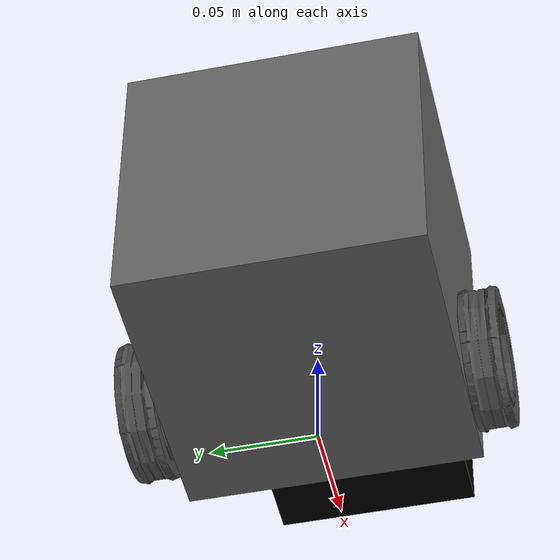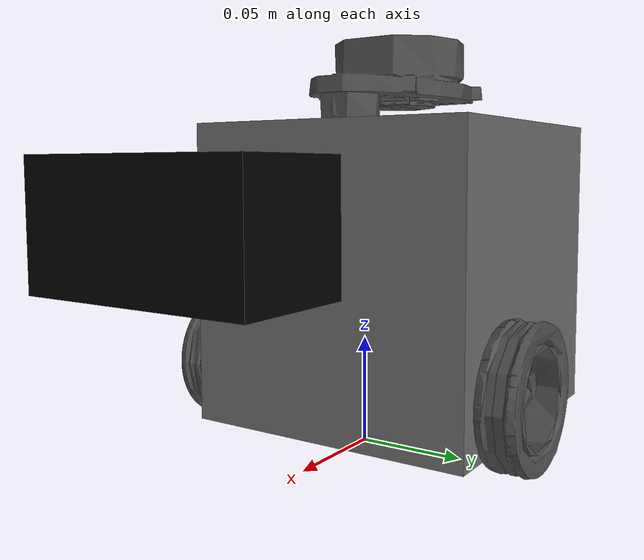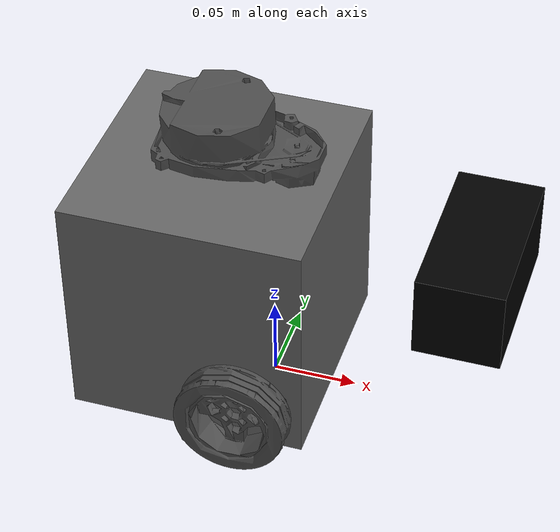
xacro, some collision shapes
<?xml version="1.0" ?>
<robot name="turtlebot3_burger_with_rgbd" xmlns:xacro="http://ros.org/wiki/xacro">
  <xacro:include filename="$(find turtlebot3_description)/urdf/turtlebot3_burger.urdf" />

  <!-- Camera link -->
  <link name="camera_link">
    <visual>
      <geometry>
        <box size="0.05 0.1 0.05"/>
      </geometry>
      <material name="black"/>
    </visual>
    <collision>
      <geometry>
        <box size="0.05 0.1 0.05"/>
      </geometry>
    </collision>
    <inertial>
      <mass value="0.1"/>
      <inertia ixx="0.0001" ixy="0.0" ixz="0.0" iyy="0.0001" iyz="0.0" izz="0.0001"/>
    </inertial>
  </link>

  <!-- Joint to attach camera to base -->
  <joint name="camera_joint" type="fixed">
    <parent link="base_link"/>
    <child link="camera_link"/>
    <origin xyz="0.12 0.0 0.1" rpy="0 0 0"/> <!-- Front-facing, slightly up -->
  </joint>

  <!-- Gazebo RGB-D sensor -->
  <gazebo reference="camera_link">
    <sensor name="rgbd_camera" type="depth">
      <pose>0 0 0 0 0 0</pose>
      <update_rate>30</update_rate>
      <camera>
        <horizontal_fov>1.047</horizontal_fov> <!-- 60 degrees -->
        <image>
          <format>R8G8B8</format>
          <width>640</width>
          <height>480</height>
        </image>
        <clip>
          <near>0.1</near>
          <far>5.0</far>
        </clip>
      </camera>
      <plugin filename="libgazebo_ros_depth_camera.so" name="rgbd_plugin">
        <ros>
          <namespace>/camera</namespace>
        </ros>
        <alwaysOn>true</alwaysOn>
        <updateRate>30</updateRate>
        <cameraName>camera</cameraName>
        <frameName>camera_link</frameName>
        <imageTopicName>color/image_raw</imageTopicName>
        <depthImageTopicName>depth/image_raw</depthImageTopicName>
        <cameraInfoTopicName>color/camera_info</cameraInfoTopicName>
        <depthCameraInfoTopicName>depth/camera_info</depthCameraInfoTopicName>
      </plugin>
    </sensor>
  </gazebo>

</robot>

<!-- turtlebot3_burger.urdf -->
<!-- |    This document was autogenerated by xacro from /tmp/claude-0/-home-claude/8f5dd28e-fe63-5f45-8f7e-d1a0395364a9/scratchpad/repos/tb3/turtlebot3_description/urdf/turtlebot3_burger.urdf | -->
<!-- |    EDITING THIS FILE BY HAND IS NOT RECOMMENDED                                 | -->
<robot name="turtlebot3_burger">
  <!-- Init colour -->
  <material name="black">
    <color rgba="0.0 0.0 0.0 1.0"/>
  </material>
  <material name="dark">
    <color rgba="0.3 0.3 0.3 1.0"/>
  </material>
  <material name="light_black">
    <color rgba="0.4 0.4 0.4 1.0"/>
  </material>
  <material name="blue">
    <color rgba="0.0 0.0 0.8 1.0"/>
  </material>
  <material name="green">
    <color rgba="0.0 0.8 0.0 1.0"/>
  </material>
  <material name="grey">
    <color rgba="0.5 0.5 0.5 1.0"/>
  </material>
  <material name="orange">
    <color rgba="1.0 0.4235 0.0392 1.0"/>
  </material>
  <material name="brown">
    <color rgba="0.8706 0.8118 0.7647 1.0"/>
  </material>
  <material name="red">
    <color rgba="0.8 0.0 0.0 1.0"/>
  </material>
  <material name="white">
    <color rgba="1.0 1.0 1.0 1.0"/>
  </material>
  <link name="base_footprint"/>
  <joint name="base_joint" type="fixed">
    <parent link="base_footprint"/>
    <child link="base_link"/>
    <origin rpy="0 0 0" xyz="0.0 0.0 0.010"/>
  </joint>
  <link name="base_link">
    <visual>
      <origin rpy="0 0 0" xyz="-0.032 0 0.0"/>
      <geometry>
        <mesh filename="package://turtlebot3_description/meshes/bases/burger_base.stl" scale="0.001 0.001 0.001"/>
      </geometry>
      <material name="light_black"/>
    </visual>
    <collision>
      <origin rpy="0 0 0" xyz="-0.032 0 0.070"/>
      <geometry>
        <box size="0.140 0.140 0.143"/>
      </geometry>
    </collision>
    <inertial>
      <origin rpy="0 0 0" xyz="0 0 0"/>
      <mass value="8.2573504e-01"/>
      <inertia ixx="2.2124416e-03" ixy="-1.2294101e-05" ixz="3.4938785e-05" iyy="2.1193702e-03" iyz="-5.0120904e-06" izz="2.0064271e-03"/>
    </inertial>
  </link>
  <joint name="wheel_left_joint" type="continuous">
    <parent link="base_link"/>
    <child link="wheel_left_link"/>
    <origin rpy="-1.57 0 0" xyz="0.0 0.08 0.023"/>
    <axis xyz="0 0 1"/>
  </joint>
  <link name="wheel_left_link">
    <visual>
      <origin rpy="1.57 0 0" xyz="0 0 0"/>
      <geometry>
        <mesh filename="package://turtlebot3_description/meshes/wheels/left_tire.stl" scale="0.001 0.001 0.001"/>
      </geometry>
      <material name="dark"/>
    </visual>
    <collision>
      <origin rpy="0 0 0" xyz="0 0 0"/>
      <geometry>
        <cylinder length="0.018" radius="0.033"/>
      </geometry>
    </collision>
    <inertial>
      <origin xyz="0 0 0"/>
      <mass value="2.8498940e-02"/>
      <inertia ixx="1.1175580e-05" ixy="-4.2369783e-11" ixz="-5.9381719e-09" iyy="1.1192413e-05" iyz="-1.4400107e-11" izz="2.0712558e-05"/>
    </inertial>
  </link>
  <joint name="wheel_right_joint" type="continuous">
    <parent link="base_link"/>
    <child link="wheel_right_link"/>
    <origin rpy="-1.57 0 0" xyz="0.0 -0.080 0.023"/>
    <axis xyz="0 0 1"/>
  </joint>
  <link name="wheel_right_link">
    <visual>
      <origin rpy="1.57 0 0" xyz="0 0 0"/>
      <geometry>
        <mesh filename="package://turtlebot3_description/meshes/wheels/right_tire.stl" scale="0.001 0.001 0.001"/>
      </geometry>
      <material name="dark"/>
    </visual>
    <collision>
      <origin rpy="0 0 0" xyz="0 0 0"/>
      <geometry>
        <cylinder length="0.018" radius="0.033"/>
      </geometry>
    </collision>
    <inertial>
      <origin xyz="0 0 0"/>
      <mass value="2.8498940e-02"/>
      <inertia ixx="1.1175580e-05" ixy="-4.2369783e-11" ixz="-5.9381719e-09" iyy="1.1192413e-05" iyz="-1.4400107e-11" izz="2.0712558e-05"/>
    </inertial>
  </link>
  <joint name="caster_back_joint" type="fixed">
    <parent link="base_link"/>
    <child link="caster_back_link"/>
    <origin rpy="-1.57 0 0" xyz="-0.081 0 -0.004"/>
  </joint>
  <link name="caster_back_link">
    <collision>
      <origin rpy="0 0 0" xyz="0 0.001 0"/>
      <geometry>
        <box size="0.030 0.009 0.020"/>
      </geometry>
    </collision>
    <inertial>
      <origin xyz="0 0 0"/>
      <mass value="0.005"/>
      <inertia ixx="0.001" ixy="0.0" ixz="0.0" iyy="0.001" iyz="0.0" izz="0.001"/>
    </inertial>
  </link>
  <joint name="imu_joint" type="fixed">
    <parent link="base_link"/>
    <child link="imu_link"/>
    <origin rpy="0 0 0" xyz="-0.032 0 0.068"/>
  </joint>
  <link name="imu_link"/>
  <joint name="scan_joint" type="fixed">
    <parent link="base_link"/>
    <child link="base_scan"/>
    <origin rpy="0 0 0" xyz="-0.032 0 0.172"/>
  </joint>
  <link name="base_scan">
    <visual>
      <origin rpy="0 0 0" xyz="0 0 0.0"/>
      <geometry>
        <mesh filename="package://turtlebot3_description/meshes/sensors/lds.stl" scale="0.001 0.001 0.001"/>
      </geometry>
      <material name="dark"/>
    </visual>
    <collision>
      <origin rpy="0 0 0" xyz="0.015 0 -0.0065"/>
      <geometry>
        <cylinder length="0.0315" radius="0.055"/>
      </geometry>
    </collision>
    <inertial>
      <mass value="0.114"/>
      <origin xyz="0 0 0"/>
      <inertia ixx="0.001" ixy="0.0" ixz="0.0" iyy="0.001" iyz="0.0" izz="0.001"/>
    </inertial>
  </link>
</robot>
